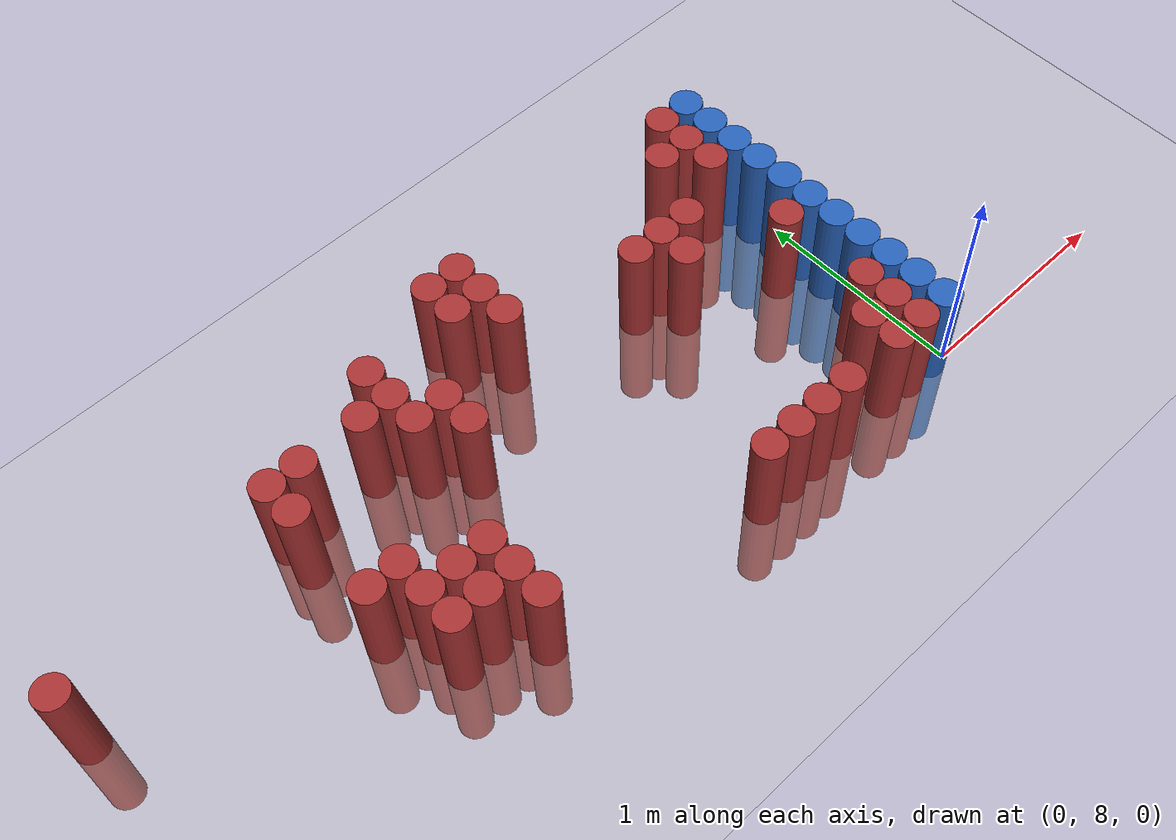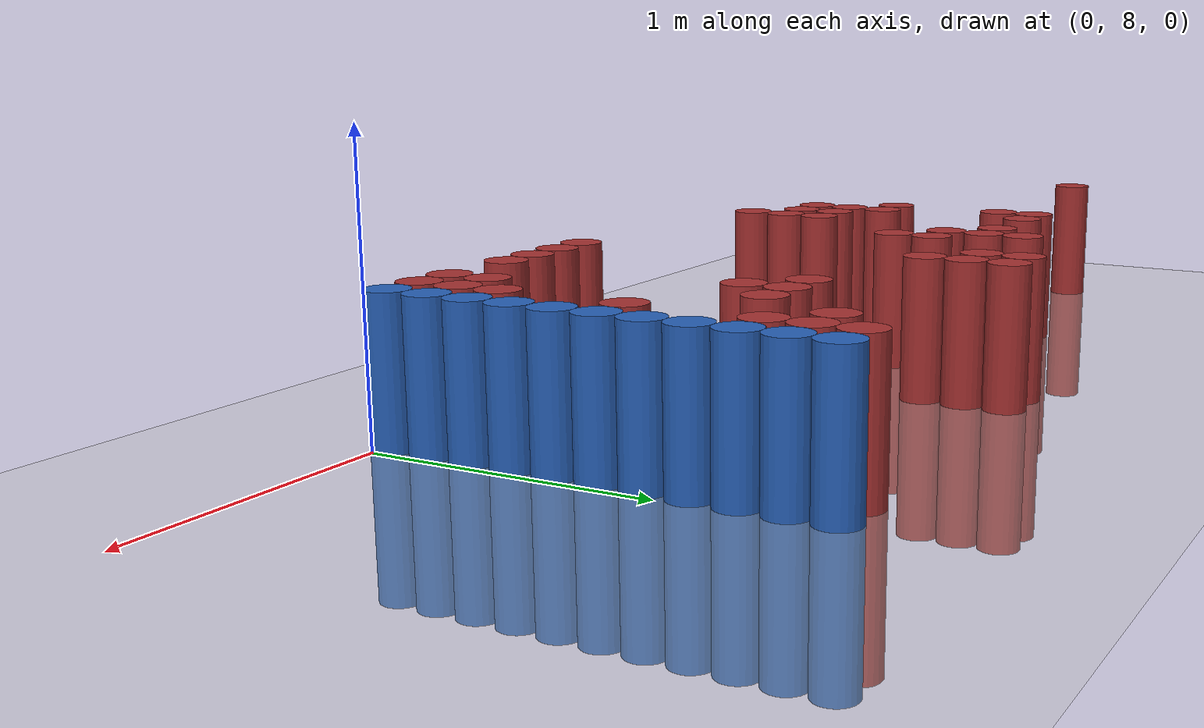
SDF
<sdf version="1.6">
 <world name="default">
  <model name="ground_plane">
   <static>1</static>
   <link name="link">
    <collision name="collision">
     <geometry><plane><normal>0 0 1</normal><size>100 100</size></plane></geometry>
     <surface><friction><ode><mu>100</mu><mu2>50</mu2></ode></friction></surface>
    </collision>
    <visual name="visual">
     <cast_shadows>0</cast_shadows>
     <geometry><plane><normal>0 0 1</normal><size>100 100</size></plane></geometry>
     <material>
      <script><uri>file://media/materials/scripts/gazebo.material</uri><name>Gazebo/Grey</name></script>
     </material>
    </visual>
   </link>
  </model>
  <model name="unit_cylinder_153">
   <static>1</static>
   <pose>-3.675000 9.075000 0.000000 0.000000 0.000000 0.000000</pose>
   <link name="link">
    <inertial>
     <mass>1</mass>
     <inertia><ixx>0.145833</ixx><ixy>0</ixy><ixz>0</ixz><iyy>0.145833</iyy><iyz>0</iyz><izz>0.125</izz></inertia>
    </inertial>
    <collision name="collision">
     <geometry><cylinder><radius>0.075000</radius><length>1</length></cylinder></geometry>
    </collision>
    <visual name="visual">
     <geometry><cylinder><radius>0.075000</radius><length>1</length></cylinder></geometry>
     <material>
      <ambient>0.648000 0.192000 0.192000 1</ambient>
      <diffuse>0.648000 0.192000 0.192000 1</diffuse>
     </material>
     <material>
      <script><name>Gazebo/Grey</name><uri>file://media/materials/scripts/gazebo.material</uri></script>
     </material>
    </visual>
   </link>
  </model>
  <model name="unit_cylinder_159">
   <static>1</static>
   <pose>-2.625000 8.625000 0.000000 0.000000 0.000000 0.000000</pose>
   <link name="link">
    <inertial>
     <mass>1</mass>
     <inertia><ixx>0.145833</ixx><ixy>0</ixy><ixz>0</ixz><iyy>0.145833</iyy><iyz>0</iyz><izz>0.125</izz></inertia>
    </inertial>
    <collision name="collision">
     <geometry><cylinder><radius>0.075000</radius><length>1</length></cylinder></geometry>
    </collision>
    <visual name="visual">
     <geometry><cylinder><radius>0.075000</radius><length>1</length></cylinder></geometry>
     <material>
      <ambient>0.648000 0.192000 0.192000 1</ambient>
      <diffuse>0.648000 0.192000 0.192000 1</diffuse>
     </material>
     <material>
      <script><name>Gazebo/Grey</name><uri>file://media/materials/scripts/gazebo.material</uri></script>
     </material>
    </visual>
   </link>
  </model>
  <model name="unit_cylinder_160">
   <static>1</static>
   <pose>-2.625000 9.075000 0.000000 0.000000 0.000000 0.000000</pose>
   <link name="link">
    <inertial>
     <mass>1</mass>
     <inertia><ixx>0.145833</ixx><ixy>0</ixy><ixz>0</ixz><iyy>0.145833</iyy><iyz>0</iyz><izz>0.125</izz></inertia>
    </inertial>
    <collision name="collision">
     <geometry><cylinder><radius>0.075000</radius><length>1</length></cylinder></geometry>
    </collision>
    <visual name="visual">
     <geometry><cylinder><radius>0.075000</radius><length>1</length></cylinder></geometry>
     <material>
      <ambient>0.648000 0.192000 0.192000 1</ambient>
      <diffuse>0.648000 0.192000 0.192000 1</diffuse>
     </material>
     <material>
      <script><name>Gazebo/Grey</name><uri>file://media/materials/scripts/gazebo.material</uri></script>
     </material>
    </visual>
   </link>
  </model>
  <model name="unit_cylinder_161">
   <static>1</static>
   <pose>-2.625000 9.225000 0.000000 0.000000 0.000000 0.000000</pose>
   <link name="link">
    <inertial>
     <mass>1</mass>
     <inertia><ixx>0.145833</ixx><ixy>0</ixy><ixz>0</ixz><iyy>0.145833</iyy><iyz>0</iyz><izz>0.125</izz></inertia>
    </inertial>
    <collision name="collision">
     <geometry><cylinder><radius>0.075000</radius><length>1</length></cylinder></geometry>
    </collision>
    <visual name="visual">
     <geometry><cylinder><radius>0.075000</radius><length>1</length></cylinder></geometry>
     <material>
      <ambient>0.648000 0.192000 0.192000 1</ambient>
      <diffuse>0.648000 0.192000 0.192000 1</diffuse>
     </material>
     <material>
      <script><name>Gazebo/Grey</name><uri>file://media/materials/scripts/gazebo.material</uri></script>
     </material>
    </visual>
   </link>
  </model>
  <model name="unit_cylinder_165">
   <static>1</static>
   <pose>-2.475000 8.325000 0.000000 0.000000 0.000000 0.000000</pose>
   <link name="link">
    <inertial>
     <mass>1</mass>
     <inertia><ixx>0.145833</ixx><ixy>0</ixy><ixz>0</ixz><iyy>0.145833</iyy><iyz>0</iyz><izz>0.125</izz></inertia>
    </inertial>
    <collision name="collision">
     <geometry><cylinder><radius>0.075000</radius><length>1</length></cylinder></geometry>
    </collision>
    <visual name="visual">
     <geometry><cylinder><radius>0.075000</radius><length>1</length></cylinder></geometry>
     <material>
      <ambient>0.648000 0.192000 0.192000 1</ambient>
      <diffuse>0.648000 0.192000 0.192000 1</diffuse>
     </material>
     <material>
      <script><name>Gazebo/Grey</name><uri>file://media/materials/scripts/gazebo.material</uri></script>
     </material>
    </visual>
   </link>
  </model>
  <model name="unit_cylinder_166">
   <static>1</static>
   <pose>-2.475000 8.475000 0.000000 0.000000 0.000000 0.000000</pose>
   <link name="link">
    <inertial>
     <mass>1</mass>
     <inertia><ixx>0.145833</ixx><ixy>0</ixy><ixz>0</ixz><iyy>0.145833</iyy><iyz>0</iyz><izz>0.125</izz></inertia>
    </inertial>
    <collision name="collision">
     <geometry><cylinder><radius>0.075000</radius><length>1</length></cylinder></geometry>
    </collision>
    <visual name="visual">
     <geometry><cylinder><radius>0.075000</radius><length>1</length></cylinder></geometry>
     <material>
      <ambient>0.648000 0.192000 0.192000 1</ambient>
      <diffuse>0.648000 0.192000 0.192000 1</diffuse>
     </material>
     <material>
      <script><name>Gazebo/Grey</name><uri>file://media/materials/scripts/gazebo.material</uri></script>
     </material>
    </visual>
   </link>
  </model>
  <model name="unit_cylinder_167">
   <static>1</static>
   <pose>-2.475000 8.625000 0.000000 0.000000 0.000000 0.000000</pose>
   <link name="link">
    <inertial>
     <mass>1</mass>
     <inertia><ixx>0.145833</ixx><ixy>0</ixy><ixz>0</ixz><iyy>0.145833</iyy><iyz>0</iyz><izz>0.125</izz></inertia>
    </inertial>
    <collision name="collision">
     <geometry><cylinder><radius>0.075000</radius><length>1</length></cylinder></geometry>
    </collision>
    <visual name="visual">
     <geometry><cylinder><radius>0.075000</radius><length>1</length></cylinder></geometry>
     <material>
      <ambient>0.648000 0.192000 0.192000 1</ambient>
      <diffuse>0.648000 0.192000 0.192000 1</diffuse>
     </material>
     <material>
      <script><name>Gazebo/Grey</name><uri>file://media/materials/scripts/gazebo.material</uri></script>
     </material>
    </visual>
   </link>
  </model>
  <model name="unit_cylinder_168">
   <static>1</static>
   <pose>-2.475000 9.225000 0.000000 0.000000 0.000000 0.000000</pose>
   <link name="link">
    <inertial>
     <mass>1</mass>
     <inertia><ixx>0.145833</ixx><ixy>0</ixy><ixz>0</ixz><iyy>0.145833</iyy><iyz>0</iyz><izz>0.125</izz></inertia>
    </inertial>
    <collision name="collision">
     <geometry><cylinder><radius>0.075000</radius><length>1</length></cylinder></geometry>
    </collision>
    <visual name="visual">
     <geometry><cylinder><radius>0.075000</radius><length>1</length></cylinder></geometry>
     <material>
      <ambient>0.648000 0.192000 0.192000 1</ambient>
      <diffuse>0.648000 0.192000 0.192000 1</diffuse>
     </material>
     <material>
      <script><name>Gazebo/Grey</name><uri>file://media/materials/scripts/gazebo.material</uri></script>
     </material>
    </visual>
   </link>
  </model>
  <model name="unit_cylinder_171">
   <static>1</static>
   <pose>-2.325000 8.325000 0.000000 0.000000 0.000000 0.000000</pose>
   <link name="link">
    <inertial>
     <mass>1</mass>
     <inertia><ixx>0.145833</ixx><ixy>0</ixy><ixz>0</ixz><iyy>0.145833</iyy><iyz>0</iyz><izz>0.125</izz></inertia>
    </inertial>
    <collision name="collision">
     <geometry><cylinder><radius>0.075000</radius><length>1</length></cylinder></geometry>
    </collision>
    <visual name="visual">
     <geometry><cylinder><radius>0.075000</radius><length>1</length></cylinder></geometry>
     <material>
      <ambient>0.648000 0.192000 0.192000 1</ambient>
      <diffuse>0.648000 0.192000 0.192000 1</diffuse>
     </material>
     <material>
      <script><name>Gazebo/Grey</name><uri>file://media/materials/scripts/gazebo.material</uri></script>
     </material>
    </visual>
   </link>
  </model>
  <model name="unit_cylinder_172">
   <static>1</static>
   <pose>-2.325000 8.475000 0.000000 0.000000 0.000000 0.000000</pose>
   <link name="link">
    <inertial>
     <mass>1</mass>
     <inertia><ixx>0.145833</ixx><ixy>0</ixy><ixz>0</ixz><iyy>0.145833</iyy><iyz>0</iyz><izz>0.125</izz></inertia>
    </inertial>
    <collision name="collision">
     <geometry><cylinder><radius>0.075000</radius><length>1</length></cylinder></geometry>
    </collision>
    <visual name="visual">
     <geometry><cylinder><radius>0.075000</radius><length>1</length></cylinder></geometry>
     <material>
      <ambient>0.648000 0.192000 0.192000 1</ambient>
      <diffuse>0.648000 0.192000 0.192000 1</diffuse>
     </material>
     <material>
      <script><name>Gazebo/Grey</name><uri>file://media/materials/scripts/gazebo.material</uri></script>
     </material>
    </visual>
   </link>
  </model>
  <model name="unit_cylinder_175">
   <static>1</static>
   <pose>-2.175000 8.175000 0.000000 0.000000 0.000000 0.000000</pose>
   <link name="link">
    <inertial>
     <mass>1</mass>
     <inertia><ixx>0.145833</ixx><ixy>0</ixy><ixz>0</ixz><iyy>0.145833</iyy><iyz>0</iyz><izz>0.125</izz></inertia>
    </inertial>
    <collision name="collision">
     <geometry><cylinder><radius>0.075000</radius><length>1</length></cylinder></geometry>
    </collision>
    <visual name="visual">
     <geometry><cylinder><radius>0.075000</radius><length>1</length></cylinder></geometry>
     <material>
      <ambient>0.648000 0.192000 0.192000 1</ambient>
      <diffuse>0.648000 0.192000 0.192000 1</diffuse>
     </material>
     <material>
      <script><name>Gazebo/Grey</name><uri>file://media/materials/scripts/gazebo.material</uri></script>
     </material>
    </visual>
   </link>
  </model>
  <model name="unit_cylinder_176">
   <static>1</static>
   <pose>-2.175000 8.325000 0.000000 0.000000 0.000000 0.000000</pose>
   <link name="link">
    <inertial>
     <mass>1</mass>
     <inertia><ixx>0.145833</ixx><ixy>0</ixy><ixz>0</ixz><iyy>0.145833</iyy><iyz>0</iyz><izz>0.125</izz></inertia>
    </inertial>
    <collision name="collision">
     <geometry><cylinder><radius>0.075000</radius><length>1</length></cylinder></geometry>
    </collision>
    <visual name="visual">
     <geometry><cylinder><radius>0.075000</radius><length>1</length></cylinder></geometry>
     <material>
      <ambient>0.648000 0.192000 0.192000 1</ambient>
      <diffuse>0.648000 0.192000 0.192000 1</diffuse>
     </material>
     <material>
      <script><name>Gazebo/Grey</name><uri>file://media/materials/scripts/gazebo.material</uri></script>
     </material>
    </visual>
   </link>
  </model>
  <model name="unit_cylinder_177">
   <static>1</static>
   <pose>-2.175000 8.475000 0.000000 0.000000 0.000000 0.000000</pose>
   <link name="link">
    <inertial>
     <mass>1</mass>
     <inertia><ixx>0.145833</ixx><ixy>0</ixy><ixz>0</ixz><iyy>0.145833</iyy><iyz>0</iyz><izz>0.125</izz></inertia>
    </inertial>
    <collision name="collision">
     <geometry><cylinder><radius>0.075000</radius><length>1</length></cylinder></geometry>
    </collision>
    <visual name="visual">
     <geometry><cylinder><radius>0.075000</radius><length>1</length></cylinder></geometry>
     <material>
      <ambient>0.648000 0.192000 0.192000 1</ambient>
      <diffuse>0.648000 0.192000 0.192000 1</diffuse>
     </material>
     <material>
      <script><name>Gazebo/Grey</name><uri>file://media/materials/scripts/gazebo.material</uri></script>
     </material>
    </visual>
   </link>
  </model>
  <model name="unit_cylinder_178">
   <static>1</static>
   <pose>-2.175000 9.225000 0.000000 0.000000 0.000000 0.000000</pose>
   <link name="link">
    <inertial>
     <mass>1</mass>
     <inertia><ixx>0.145833</ixx><ixy>0</ixy><ixz>0</ixz><iyy>0.145833</iyy><iyz>0</iyz><izz>0.125</izz></inertia>
    </inertial>
    <collision name="collision">
     <geometry><cylinder><radius>0.075000</radius><length>1</length></cylinder></geometry>
    </collision>
    <visual name="visual">
     <geometry><cylinder><radius>0.075000</radius><length>1</length></cylinder></geometry>
     <material>
      <ambient>0.648000 0.192000 0.192000 1</ambient>
      <diffuse>0.648000 0.192000 0.192000 1</diffuse>
     </material>
     <material>
      <script><name>Gazebo/Grey</name><uri>file://media/materials/scripts/gazebo.material</uri></script>
     </material>
    </visual>
   </link>
  </model>
  <model name="unit_cylinder_181">
   <static>1</static>
   <pose>-2.025000 9.075000 0.000000 0.000000 0.000000 0.000000</pose>
   <link name="link">
    <inertial>
     <mass>1</mass>
     <inertia><ixx>0.145833</ixx><ixy>0</ixy><ixz>0</ixz><iyy>0.145833</iyy><iyz>0</iyz><izz>0.125</izz></inertia>
    </inertial>
    <collision name="collision">
     <geometry><cylinder><radius>0.075000</radius><length>1</length></cylinder></geometry>
    </collision>
    <visual name="visual">
     <geometry><cylinder><radius>0.075000</radius><length>1</length></cylinder></geometry>
     <material>
      <ambient>0.648000 0.192000 0.192000 1</ambient>
      <diffuse>0.648000 0.192000 0.192000 1</diffuse>
     </material>
     <material>
      <script><name>Gazebo/Grey</name><uri>file://media/materials/scripts/gazebo.material</uri></script>
     </material>
    </visual>
   </link>
  </model>
  <model name="unit_cylinder_182">
   <static>1</static>
   <pose>-2.025000 9.225000 0.000000 0.000000 0.000000 0.000000</pose>
   <link name="link">
    <inertial>
     <mass>1</mass>
     <inertia><ixx>0.145833</ixx><ixy>0</ixy><ixz>0</ixz><iyy>0.145833</iyy><iyz>0</iyz><izz>0.125</izz></inertia>
    </inertial>
    <collision name="collision">
     <geometry><cylinder><radius>0.075000</radius><length>1</length></cylinder></geometry>
    </collision>
    <visual name="visual">
     <geometry><cylinder><radius>0.075000</radius><length>1</length></cylinder></geometry>
     <material>
      <ambient>0.648000 0.192000 0.192000 1</ambient>
      <diffuse>0.648000 0.192000 0.192000 1</diffuse>
     </material>
     <material>
      <script><name>Gazebo/Grey</name><uri>file://media/materials/scripts/gazebo.material</uri></script>
     </material>
    </visual>
   </link>
  </model>
  <model name="unit_cylinder_183">
   <static>1</static>
   <pose>-2.025000 9.375000 0.000000 0.000000 0.000000 0.000000</pose>
   <link name="link">
    <inertial>
     <mass>1</mass>
     <inertia><ixx>0.145833</ixx><ixy>0</ixy><ixz>0</ixz><iyy>0.145833</iyy><iyz>0</iyz><izz>0.125</izz></inertia>
    </inertial>
    <collision name="collision">
     <geometry><cylinder><radius>0.075000</radius><length>1</length></cylinder></geometry>
    </collision>
    <visual name="visual">
     <geometry><cylinder><radius>0.075000</radius><length>1</length></cylinder></geometry>
     <material>
      <ambient>0.648000 0.192000 0.192000 1</ambient>
      <diffuse>0.648000 0.192000 0.192000 1</diffuse>
     </material>
     <material>
      <script><name>Gazebo/Grey</name><uri>file://media/materials/scripts/gazebo.material</uri></script>
     </material>
    </visual>
   </link>
  </model>
  <model name="unit_cylinder_185">
   <static>1</static>
   <pose>-1.875000 8.925000 0.000000 0.000000 0.000000 0.000000</pose>
   <link name="link">
    <inertial>
     <mass>1</mass>
     <inertia><ixx>0.145833</ixx><ixy>0</ixy><ixz>0</ixz><iyy>0.145833</iyy><iyz>0</iyz><izz>0.125</izz></inertia>
    </inertial>
    <collision name="collision">
     <geometry><cylinder><radius>0.075000</radius><length>1</length></cylinder></geometry>
    </collision>
    <visual name="visual">
     <geometry><cylinder><radius>0.075000</radius><length>1</length></cylinder></geometry>
     <material>
      <ambient>0.648000 0.192000 0.192000 1</ambient>
      <diffuse>0.648000 0.192000 0.192000 1</diffuse>
     </material>
     <material>
      <script><name>Gazebo/Grey</name><uri>file://media/materials/scripts/gazebo.material</uri></script>
     </material>
    </visual>
   </link>
  </model>
  <model name="unit_cylinder_186">
   <static>1</static>
   <pose>-1.875000 9.075000 0.000000 0.000000 0.000000 0.000000</pose>
   <link name="link">
    <inertial>
     <mass>1</mass>
     <inertia><ixx>0.145833</ixx><ixy>0</ixy><ixz>0</ixz><iyy>0.145833</iyy><iyz>0</iyz><izz>0.125</izz></inertia>
    </inertial>
    <collision name="collision">
     <geometry><cylinder><radius>0.075000</radius><length>1</length></cylinder></geometry>
    </collision>
    <visual name="visual">
     <geometry><cylinder><radius>0.075000</radius><length>1</length></cylinder></geometry>
     <material>
      <ambient>0.648000 0.192000 0.192000 1</ambient>
      <diffuse>0.648000 0.192000 0.192000 1</diffuse>
     </material>
     <material>
      <script><name>Gazebo/Grey</name><uri>file://media/materials/scripts/gazebo.material</uri></script>
     </material>
    </visual>
   </link>
  </model>
  <model name="unit_cylinder_188">
   <static>1</static>
   <pose>-1.575000 9.375000 0.000000 0.000000 0.000000 0.000000</pose>
   <link name="link">
    <inertial>
     <mass>1</mass>
     <inertia><ixx>0.145833</ixx><ixy>0</ixy><ixz>0</ixz><iyy>0.145833</iyy><iyz>0</iyz><izz>0.125</izz></inertia>
    </inertial>
    <collision name="collision">
     <geometry><cylinder><radius>0.075000</radius><length>1</length></cylinder></geometry>
    </collision>
    <visual name="visual">
     <geometry><cylinder><radius>0.075000</radius><length>1</length></cylinder></geometry>
     <material>
      <ambient>0.648000 0.192000 0.192000 1</ambient>
      <diffuse>0.648000 0.192000 0.192000 1</diffuse>
     </material>
     <material>
      <script><name>Gazebo/Grey</name><uri>file://media/materials/scripts/gazebo.material</uri></script>
     </material>
    </visual>
   </link>
  </model>
  <model name="unit_cylinder_189">
   <static>1</static>
   <pose>-1.575000 9.525000 0.000000 0.000000 0.000000 0.000000</pose>
   <link name="link">
    <inertial>
     <mass>1</mass>
     <inertia><ixx>0.145833</ixx><ixy>0</ixy><ixz>0</ixz><iyy>0.145833</iyy><iyz>0</iyz><izz>0.125</izz></inertia>
    </inertial>
    <collision name="collision">
     <geometry><cylinder><radius>0.075000</radius><length>1</length></cylinder></geometry>
    </collision>
    <visual name="visual">
     <geometry><cylinder><radius>0.075000</radius><length>1</length></cylinder></geometry>
     <material>
      <ambient>0.648000 0.192000 0.192000 1</ambient>
      <diffuse>0.648000 0.192000 0.192000 1</diffuse>
     </material>
     <material>
      <script><name>Gazebo/Grey</name><uri>file://media/materials/scripts/gazebo.material</uri></script>
     </material>
    </visual>
   </link>
  </model>
  <model name="unit_cylinder_192">
   <static>1</static>
   <pose>-1.425000 9.225000 0.000000 0.000000 0.000000 0.000000</pose>
   <link name="link">
    <inertial>
     <mass>1</mass>
     <inertia><ixx>0.145833</ixx><ixy>0</ixy><ixz>0</ixz><iyy>0.145833</iyy><iyz>0</iyz><izz>0.125</izz></inertia>
    </inertial>
    <collision name="collision">
     <geometry><cylinder><radius>0.075000</radius><length>1</length></cylinder></geometry>
    </collision>
    <visual name="visual">
     <geometry><cylinder><radius>0.075000</radius><length>1</length></cylinder></geometry>
     <material>
      <ambient>0.648000 0.192000 0.192000 1</ambient>
      <diffuse>0.648000 0.192000 0.192000 1</diffuse>
     </material>
     <material>
      <script><name>Gazebo/Grey</name><uri>file://media/materials/scripts/gazebo.material</uri></script>
     </material>
    </visual>
   </link>
  </model>
  <model name="unit_cylinder_193">
   <static>1</static>
   <pose>-1.425000 9.375000 0.000000 0.000000 0.000000 0.000000</pose>
   <link name="link">
    <inertial>
     <mass>1</mass>
     <inertia><ixx>0.145833</ixx><ixy>0</ixy><ixz>0</ixz><iyy>0.145833</iyy><iyz>0</iyz><izz>0.125</izz></inertia>
    </inertial>
    <collision name="collision">
     <geometry><cylinder><radius>0.075000</radius><length>1</length></cylinder></geometry>
    </collision>
    <visual name="visual">
     <geometry><cylinder><radius>0.075000</radius><length>1</length></cylinder></geometry>
     <material>
      <ambient>0.648000 0.192000 0.192000 1</ambient>
      <diffuse>0.648000 0.192000 0.192000 1</diffuse>
     </material>
     <material>
      <script><name>Gazebo/Grey</name><uri>file://media/materials/scripts/gazebo.material</uri></script>
     </material>
    </visual>
   </link>
  </model>
  <model name="unit_cylinder_194">
   <static>1</static>
   <pose>-1.425000 9.525000 0.000000 0.000000 0.000000 0.000000</pose>
   <link name="link">
    <inertial>
     <mass>1</mass>
     <inertia><ixx>0.145833</ixx><ixy>0</ixy><ixz>0</ixz><iyy>0.145833</iyy><iyz>0</iyz><izz>0.125</izz></inertia>
    </inertial>
    <collision name="collision">
     <geometry><cylinder><radius>0.075000</radius><length>1</length></cylinder></geometry>
    </collision>
    <visual name="visual">
     <geometry><cylinder><radius>0.075000</radius><length>1</length></cylinder></geometry>
     <material>
      <ambient>0.648000 0.192000 0.192000 1</ambient>
      <diffuse>0.648000 0.192000 0.192000 1</diffuse>
     </material>
     <material>
      <script><name>Gazebo/Grey</name><uri>file://media/materials/scripts/gazebo.material</uri></script>
     </material>
    </visual>
   </link>
  </model>
  <model name="unit_cylinder_197">
   <static>1</static>
   <pose>-1.125000 8.025000 0.000000 0.000000 0.000000 0.000000</pose>
   <link name="link">
    <inertial>
     <mass>1</mass>
     <inertia><ixx>0.145833</ixx><ixy>0</ixy><ixz>0</ixz><iyy>0.145833</iyy><iyz>0</iyz><izz>0.125</izz></inertia>
    </inertial>
    <collision name="collision">
     <geometry><cylinder><radius>0.075000</radius><length>1</length></cylinder></geometry>
    </collision>
    <visual name="visual">
     <geometry><cylinder><radius>0.075000</radius><length>1</length></cylinder></geometry>
     <material>
      <ambient>0.648000 0.192000 0.192000 1</ambient>
      <diffuse>0.648000 0.192000 0.192000 1</diffuse>
     </material>
     <material>
      <script><name>Gazebo/Grey</name><uri>file://media/materials/scripts/gazebo.material</uri></script>
     </material>
    </visual>
   </link>
  </model>
  <model name="unit_cylinder_201">
   <static>1</static>
   <pose>-0.975000 8.025000 0.000000 0.000000 0.000000 0.000000</pose>
   <link name="link">
    <inertial>
     <mass>1</mass>
     <inertia><ixx>0.145833</ixx><ixy>0</ixy><ixz>0</ixz><iyy>0.145833</iyy><iyz>0</iyz><izz>0.125</izz></inertia>
    </inertial>
    <collision name="collision">
     <geometry><cylinder><radius>0.075000</radius><length>1</length></cylinder></geometry>
    </collision>
    <visual name="visual">
     <geometry><cylinder><radius>0.075000</radius><length>1</length></cylinder></geometry>
     <material>
      <ambient>0.648000 0.192000 0.192000 1</ambient>
      <diffuse>0.648000 0.192000 0.192000 1</diffuse>
     </material>
     <material>
      <script><name>Gazebo/Grey</name><uri>file://media/materials/scripts/gazebo.material</uri></script>
     </material>
    </visual>
   </link>
  </model>
  <model name="unit_cylinder_206">
   <static>1</static>
   <pose>-0.825000 8.025000 0.000000 0.000000 0.000000 0.000000</pose>
   <link name="link">
    <inertial>
     <mass>1</mass>
     <inertia><ixx>0.145833</ixx><ixy>0</ixy><ixz>0</ixz><iyy>0.145833</iyy><iyz>0</iyz><izz>0.125</izz></inertia>
    </inertial>
    <collision name="collision">
     <geometry><cylinder><radius>0.075000</radius><length>1</length></cylinder></geometry>
    </collision>
    <visual name="visual">
     <geometry><cylinder><radius>0.075000</radius><length>1</length></cylinder></geometry>
     <material>
      <ambient>0.648000 0.192000 0.192000 1</ambient>
      <diffuse>0.648000 0.192000 0.192000 1</diffuse>
     </material>
     <material>
      <script><name>Gazebo/Grey</name><uri>file://media/materials/scripts/gazebo.material</uri></script>
     </material>
    </visual>
   </link>
  </model>
  <model name="unit_cylinder_207">
   <static>1</static>
   <pose>-0.825000 9.075000 0.000000 0.000000 0.000000 0.000000</pose>
   <link name="link">
    <inertial>
     <mass>1</mass>
     <inertia><ixx>0.145833</ixx><ixy>0</ixy><ixz>0</ixz><iyy>0.145833</iyy><iyz>0</iyz><izz>0.125</izz></inertia>
    </inertial>
    <collision name="collision">
     <geometry><cylinder><radius>0.075000</radius><length>1</length></cylinder></geometry>
    </collision>
    <visual name="visual">
     <geometry><cylinder><radius>0.075000</radius><length>1</length></cylinder></geometry>
     <material>
      <ambient>0.648000 0.192000 0.192000 1</ambient>
      <diffuse>0.648000 0.192000 0.192000 1</diffuse>
     </material>
     <material>
      <script><name>Gazebo/Grey</name><uri>file://media/materials/scripts/gazebo.material</uri></script>
     </material>
    </visual>
   </link>
  </model>
  <model name="unit_cylinder_211">
   <static>1</static>
   <pose>-0.675000 8.025000 0.000000 0.000000 0.000000 0.000000</pose>
   <link name="link">
    <inertial>
     <mass>1</mass>
     <inertia><ixx>0.145833</ixx><ixy>0</ixy><ixz>0</ixz><iyy>0.145833</iyy><iyz>0</iyz><izz>0.125</izz></inertia>
    </inertial>
    <collision name="collision">
     <geometry><cylinder><radius>0.075000</radius><length>1</length></cylinder></geometry>
    </collision>
    <visual name="visual">
     <geometry><cylinder><radius>0.075000</radius><length>1</length></cylinder></geometry>
     <material>
      <ambient>0.648000 0.192000 0.192000 1</ambient>
      <diffuse>0.648000 0.192000 0.192000 1</diffuse>
     </material>
     <material>
      <script><name>Gazebo/Grey</name><uri>file://media/materials/scripts/gazebo.material</uri></script>
     </material>
    </visual>
   </link>
  </model>
  <model name="unit_cylinder_212">
   <static>1</static>
   <pose>-0.675000 8.925000 0.000000 0.000000 0.000000 0.000000</pose>
   <link name="link">
    <inertial>
     <mass>1</mass>
     <inertia><ixx>0.145833</ixx><ixy>0</ixy><ixz>0</ixz><iyy>0.145833</iyy><iyz>0</iyz><izz>0.125</izz></inertia>
    </inertial>
    <collision name="collision">
     <geometry><cylinder><radius>0.075000</radius><length>1</length></cylinder></geometry>
    </collision>
    <visual name="visual">
     <geometry><cylinder><radius>0.075000</radius><length>1</length></cylinder></geometry>
     <material>
      <ambient>0.648000 0.192000 0.192000 1</ambient>
      <diffuse>0.648000 0.192000 0.192000 1</diffuse>
     </material>
     <material>
      <script><name>Gazebo/Grey</name><uri>file://media/materials/scripts/gazebo.material</uri></script>
     </material>
    </visual>
   </link>
  </model>
  <model name="unit_cylinder_213">
   <static>1</static>
   <pose>-0.675000 9.075000 0.000000 0.000000 0.000000 0.000000</pose>
   <link name="link">
    <inertial>
     <mass>1</mass>
     <inertia><ixx>0.145833</ixx><ixy>0</ixy><ixz>0</ixz><iyy>0.145833</iyy><iyz>0</iyz><izz>0.125</izz></inertia>
    </inertial>
    <collision name="collision">
     <geometry><cylinder><radius>0.075000</radius><length>1</length></cylinder></geometry>
    </collision>
    <visual name="visual">
     <geometry><cylinder><radius>0.075000</radius><length>1</length></cylinder></geometry>
     <material>
      <ambient>0.648000 0.192000 0.192000 1</ambient>
      <diffuse>0.648000 0.192000 0.192000 1</diffuse>
     </material>
     <material>
      <script><name>Gazebo/Grey</name><uri>file://media/materials/scripts/gazebo.material</uri></script>
     </material>
    </visual>
   </link>
  </model>
  <model name="unit_cylinder_215">
   <static>1</static>
   <pose>-0.525000 9.075000 0.000000 0.000000 0.000000 0.000000</pose>
   <link name="link">
    <inertial>
     <mass>1</mass>
     <inertia><ixx>0.145833</ixx><ixy>0</ixy><ixz>0</ixz><iyy>0.145833</iyy><iyz>0</iyz><izz>0.125</izz></inertia>
    </inertial>
    <collision name="collision">
     <geometry><cylinder><radius>0.075000</radius><length>1</length></cylinder></geometry>
    </collision>
    <visual name="visual">
     <geometry><cylinder><radius>0.075000</radius><length>1</length></cylinder></geometry>
     <material>
      <ambient>0.648000 0.192000 0.192000 1</ambient>
      <diffuse>0.648000 0.192000 0.192000 1</diffuse>
     </material>
     <material>
      <script><name>Gazebo/Grey</name><uri>file://media/materials/scripts/gazebo.material</uri></script>
     </material>
    </visual>
   </link>
  </model>
  <model name="unit_cylinder_216">
   <static>1</static>
   <pose>-0.375000 8.025000 0.000000 0.000000 0.000000 0.000000</pose>
   <link name="link">
    <inertial>
     <mass>1</mass>
     <inertia><ixx>0.145833</ixx><ixy>0</ixy><ixz>0</ixz><iyy>0.145833</iyy><iyz>0</iyz><izz>0.125</izz></inertia>
    </inertial>
    <collision name="collision">
     <geometry><cylinder><radius>0.075000</radius><length>1</length></cylinder></geometry>
    </collision>
    <visual name="visual">
     <geometry><cylinder><radius>0.075000</radius><length>1</length></cylinder></geometry>
     <material>
      <ambient>0.648000 0.192000 0.192000 1</ambient>
      <diffuse>0.648000 0.192000 0.192000 1</diffuse>
     </material>
     <material>
      <script><name>Gazebo/Grey</name><uri>file://media/materials/scripts/gazebo.material</uri></script>
     </material>
    </visual>
   </link>
  </model>
  <model name="unit_cylinder_217">
   <static>1</static>
   <pose>-0.375000 8.175000 0.000000 0.000000 0.000000 0.000000</pose>
   <link name="link">
    <inertial>
     <mass>1</mass>
     <inertia><ixx>0.145833</ixx><ixy>0</ixy><ixz>0</ixz><iyy>0.145833</iyy><iyz>0</iyz><izz>0.125</izz></inertia>
    </inertial>
    <collision name="collision">
     <geometry><cylinder><radius>0.075000</radius><length>1</length></cylinder></geometry>
    </collision>
    <visual name="visual">
     <geometry><cylinder><radius>0.075000</radius><length>1</length></cylinder></geometry>
     <material>
      <ambient>0.648000 0.192000 0.192000 1</ambient>
      <diffuse>0.648000 0.192000 0.192000 1</diffuse>
     </material>
     <material>
      <script><name>Gazebo/Grey</name><uri>file://media/materials/scripts/gazebo.material</uri></script>
     </material>
    </visual>
   </link>
  </model>
  <model name="unit_cylinder_218">
   <static>1</static>
   <pose>-0.375000 9.375000 0.000000 0.000000 0.000000 0.000000</pose>
   <link name="link">
    <inertial>
     <mass>1</mass>
     <inertia><ixx>0.145833</ixx><ixy>0</ixy><ixz>0</ixz><iyy>0.145833</iyy><iyz>0</iyz><izz>0.125</izz></inertia>
    </inertial>
    <collision name="collision">
     <geometry><cylinder><radius>0.075000</radius><length>1</length></cylinder></geometry>
    </collision>
    <visual name="visual">
     <geometry><cylinder><radius>0.075000</radius><length>1</length></cylinder></geometry>
     <material>
      <ambient>0.648000 0.192000 0.192000 1</ambient>
      <diffuse>0.648000 0.192000 0.192000 1</diffuse>
     </material>
     <material>
      <script><name>Gazebo/Grey</name><uri>file://media/materials/scripts/gazebo.material</uri></script>
     </material>
    </visual>
   </link>
  </model>
  <model name="unit_cylinder_225">
   <static>1</static>
   <pose>-0.225000 8.025000 0.000000 0.000000 0.000000 0.000000</pose>
   <link name="link">
    <inertial>
     <mass>1</mass>
     <inertia><ixx>0.145833</ixx><ixy>0</ixy><ixz>0</ixz><iyy>0.145833</iyy><iyz>0</iyz><izz>0.125</izz></inertia>
    </inertial>
    <collision name="collision">
     <geometry><cylinder><radius>0.075000</radius><length>1</length></cylinder></geometry>
    </collision>
    <visual name="visual">
     <geometry><cylinder><radius>0.075000</radius><length>1</length></cylinder></geometry>
     <material>
      <ambient>0.648000 0.192000 0.192000 1</ambient>
      <diffuse>0.648000 0.192000 0.192000 1</diffuse>
     </material>
     <material>
      <script><name>Gazebo/Grey</name><uri>file://media/materials/scripts/gazebo.material</uri></script>
     </material>
    </visual>
   </link>
  </model>
  <model name="unit_cylinder_226">
   <static>1</static>
   <pose>-0.225000 8.175000 0.000000 0.000000 0.000000 0.000000</pose>
   <link name="link">
    <inertial>
     <mass>1</mass>
     <inertia><ixx>0.145833</ixx><ixy>0</ixy><ixz>0</ixz><iyy>0.145833</iyy><iyz>0</iyz><izz>0.125</izz></inertia>
    </inertial>
    <collision name="collision">
     <geometry><cylinder><radius>0.075000</radius><length>1</length></cylinder></geometry>
    </collision>
    <visual name="visual">
     <geometry><cylinder><radius>0.075000</radius><length>1</length></cylinder></geometry>
     <material>
      <ambient>0.648000 0.192000 0.192000 1</ambient>
      <diffuse>0.648000 0.192000 0.192000 1</diffuse>
     </material>
     <material>
      <script><name>Gazebo/Grey</name><uri>file://media/materials/scripts/gazebo.material</uri></script>
     </material>
    </visual>
   </link>
  </model>
  <model name="unit_cylinder_227">
   <static>1</static>
   <pose>-0.225000 8.325000 0.000000 0.000000 0.000000 0.000000</pose>
   <link name="link">
    <inertial>
     <mass>1</mass>
     <inertia><ixx>0.145833</ixx><ixy>0</ixy><ixz>0</ixz><iyy>0.145833</iyy><iyz>0</iyz><izz>0.125</izz></inertia>
    </inertial>
    <collision name="collision">
     <geometry><cylinder><radius>0.075000</radius><length>1</length></cylinder></geometry>
    </collision>
    <visual name="visual">
     <geometry><cylinder><radius>0.075000</radius><length>1</length></cylinder></geometry>
     <material>
      <ambient>0.648000 0.192000 0.192000 1</ambient>
      <diffuse>0.648000 0.192000 0.192000 1</diffuse>
     </material>
     <material>
      <script><name>Gazebo/Grey</name><uri>file://media/materials/scripts/gazebo.material</uri></script>
     </material>
    </visual>
   </link>
  </model>
  <model name="unit_cylinder_228">
   <static>1</static>
   <pose>-0.225000 8.775000 0.000000 0.000000 0.000000 0.000000</pose>
   <link name="link">
    <inertial>
     <mass>1</mass>
     <inertia><ixx>0.145833</ixx><ixy>0</ixy><ixz>0</ixz><iyy>0.145833</iyy><iyz>0</iyz><izz>0.125</izz></inertia>
    </inertial>
    <collision name="collision">
     <geometry><cylinder><radius>0.075000</radius><length>1</length></cylinder></geometry>
    </collision>
    <visual name="visual">
     <geometry><cylinder><radius>0.075000</radius><length>1</length></cylinder></geometry>
     <material>
      <ambient>0.648000 0.192000 0.192000 1</ambient>
      <diffuse>0.648000 0.192000 0.192000 1</diffuse>
     </material>
     <material>
      <script><name>Gazebo/Grey</name><uri>file://media/materials/scripts/gazebo.material</uri></script>
     </material>
    </visual>
   </link>
  </model>
  <model name="unit_cylinder_229">
   <static>1</static>
   <pose>-0.225000 9.225000 0.000000 0.000000 0.000000 0.000000</pose>
   <link name="link">
    <inertial>
     <mass>1</mass>
     <inertia><ixx>0.145833</ixx><ixy>0</ixy><ixz>0</ixz><iyy>0.145833</iyy><iyz>0</iyz><izz>0.125</izz></inertia>
    </inertial>
    <collision name="collision">
     <geometry><cylinder><radius>0.075000</radius><length>1</length></cylinder></geometry>
    </collision>
    <visual name="visual">
     <geometry><cylinder><radius>0.075000</radius><length>1</length></cylinder></geometry>
     <material>
      <ambient>0.648000 0.192000 0.192000 1</ambient>
      <diffuse>0.648000 0.192000 0.192000 1</diffuse>
     </material>
     <material>
      <script><name>Gazebo/Grey</name><uri>file://media/materials/scripts/gazebo.material</uri></script>
     </material>
    </visual>
   </link>
  </model>
  <model name="unit_cylinder_230">
   <static>1</static>
   <pose>-0.225000 9.375000 0.000000 0.000000 0.000000 0.000000</pose>
   <link name="link">
    <inertial>
     <mass>1</mass>
     <inertia><ixx>0.145833</ixx><ixy>0</ixy><ixz>0</ixz><iyy>0.145833</iyy><iyz>0</iyz><izz>0.125</izz></inertia>
    </inertial>
    <collision name="collision">
     <geometry><cylinder><radius>0.075000</radius><length>1</length></cylinder></geometry>
    </collision>
    <visual name="visual">
     <geometry><cylinder><radius>0.075000</radius><length>1</length></cylinder></geometry>
     <material>
      <ambient>0.648000 0.192000 0.192000 1</ambient>
      <diffuse>0.648000 0.192000 0.192000 1</diffuse>
     </material>
     <material>
      <script><name>Gazebo/Grey</name><uri>file://media/materials/scripts/gazebo.material</uri></script>
     </material>
    </visual>
   </link>
  </model>
  <model name="unit_cylinder_231">
   <static>1</static>
   <pose>-0.225000 9.525000 0.000000 0.000000 0.000000 0.000000</pose>
   <link name="link">
    <inertial>
     <mass>1</mass>
     <inertia><ixx>0.145833</ixx><ixy>0</ixy><ixz>0</ixz><iyy>0.145833</iyy><iyz>0</iyz><izz>0.125</izz></inertia>
    </inertial>
    <collision name="collision">
     <geometry><cylinder><radius>0.075000</radius><length>1</length></cylinder></geometry>
    </collision>
    <visual name="visual">
     <geometry><cylinder><radius>0.075000</radius><length>1</length></cylinder></geometry>
     <material>
      <ambient>0.648000 0.192000 0.192000 1</ambient>
      <diffuse>0.648000 0.192000 0.192000 1</diffuse>
     </material>
     <material>
      <script><name>Gazebo/Grey</name><uri>file://media/materials/scripts/gazebo.material</uri></script>
     </material>
    </visual>
   </link>
  </model>
  <model name="unit_cylinder_251">
   <static>1</static>
   <pose>-0.075000 8.025000 0.000000 0.000000 0.000000 0.000000</pose>
   <link name="link">
    <inertial>
     <mass>1</mass>
     <inertia><ixx>0.145833</ixx><ixy>0</ixy><ixz>0</ixz><iyy>0.145833</iyy><iyz>0</iyz><izz>0.125</izz></inertia>
    </inertial>
    <collision name="collision">
     <geometry><cylinder><radius>0.075000</radius><length>1</length></cylinder></geometry>
    </collision>
    <visual name="visual">
     <geometry><cylinder><radius>0.075000</radius><length>1</length></cylinder></geometry>
     <material>
      <ambient>0.152000 0.379000 0.720000 1</ambient>
      <diffuse>0.152000 0.379000 0.720000 1</diffuse>
     </material>
     <material>
      <script><name>Gazebo/Grey</name><uri>file://media/materials/scripts/gazebo.material</uri></script>
     </material>
    </visual>
   </link>
  </model>
  <model name="unit_cylinder_252">
   <static>1</static>
   <pose>-0.075000 8.175000 0.000000 0.000000 0.000000 0.000000</pose>
   <link name="link">
    <inertial>
     <mass>1</mass>
     <inertia><ixx>0.145833</ixx><ixy>0</ixy><ixz>0</ixz><iyy>0.145833</iyy><iyz>0</iyz><izz>0.125</izz></inertia>
    </inertial>
    <collision name="collision">
     <geometry><cylinder><radius>0.075000</radius><length>1</length></cylinder></geometry>
    </collision>
    <visual name="visual">
     <geometry><cylinder><radius>0.075000</radius><length>1</length></cylinder></geometry>
     <material>
      <ambient>0.152000 0.379000 0.720000 1</ambient>
      <diffuse>0.152000 0.379000 0.720000 1</diffuse>
     </material>
     <material>
      <script><name>Gazebo/Grey</name><uri>file://media/materials/scripts/gazebo.material</uri></script>
     </material>
    </visual>
   </link>
  </model>
  <model name="unit_cylinder_253">
   <static>1</static>
   <pose>-0.075000 8.325000 0.000000 0.000000 0.000000 0.000000</pose>
   <link name="link">
    <inertial>
     <mass>1</mass>
     <inertia><ixx>0.145833</ixx><ixy>0</ixy><ixz>0</ixz><iyy>0.145833</iyy><iyz>0</iyz><izz>0.125</izz></inertia>
    </inertial>
    <collision name="collision">
     <geometry><cylinder><radius>0.075000</radius><length>1</length></cylinder></geometry>
    </collision>
    <visual name="visual">
     <geometry><cylinder><radius>0.075000</radius><length>1</length></cylinder></geometry>
     <material>
      <ambient>0.152000 0.379000 0.720000 1</ambient>
      <diffuse>0.152000 0.379000 0.720000 1</diffuse>
     </material>
     <material>
      <script><name>Gazebo/Grey</name><uri>file://media/materials/scripts/gazebo.material</uri></script>
     </material>
    </visual>
   </link>
  </model>
  <model name="unit_cylinder_254">
   <static>1</static>
   <pose>-0.075000 8.475000 0.000000 0.000000 0.000000 0.000000</pose>
   <link name="link">
    <inertial>
     <mass>1</mass>
     <inertia><ixx>0.145833</ixx><ixy>0</ixy><ixz>0</ixz><iyy>0.145833</iyy><iyz>0</iyz><izz>0.125</izz></inertia>
    </inertial>
    <collision name="collision">
     <geometry><cylinder><radius>0.075000</radius><length>1</length></cylinder></geometry>
    </collision>
    <visual name="visual">
     <geometry><cylinder><radius>0.075000</radius><length>1</length></cylinder></geometry>
     <material>
      <ambient>0.152000 0.379000 0.720000 1</ambient>
      <diffuse>0.152000 0.379000 0.720000 1</diffuse>
     </material>
     <material>
      <script><name>Gazebo/Grey</name><uri>file://media/materials/scripts/gazebo.material</uri></script>
     </material>
    </visual>
   </link>
  </model>
  <model name="unit_cylinder_255">
   <static>1</static>
   <pose>-0.075000 8.625000 0.000000 0.000000 0.000000 0.000000</pose>
   <link name="link">
    <inertial>
     <mass>1</mass>
     <inertia><ixx>0.145833</ixx><ixy>0</ixy><ixz>0</ixz><iyy>0.145833</iyy><iyz>0</iyz><izz>0.125</izz></inertia>
    </inertial>
    <collision name="collision">
     <geometry><cylinder><radius>0.075000</radius><length>1</length></cylinder></geometry>
    </collision>
    <visual name="visual">
     <geometry><cylinder><radius>0.075000</radius><length>1</length></cylinder></geometry>
     <material>
      <ambient>0.152000 0.379000 0.720000 1</ambient>
      <diffuse>0.152000 0.379000 0.720000 1</diffuse>
     </material>
     <material>
      <script><name>Gazebo/Grey</name><uri>file://media/materials/scripts/gazebo.material</uri></script>
     </material>
    </visual>
   </link>
  </model>
  <model name="unit_cylinder_256">
   <static>1</static>
   <pose>-0.075000 8.775000 0.000000 0.000000 0.000000 0.000000</pose>
   <link name="link">
    <inertial>
     <mass>1</mass>
     <inertia><ixx>0.145833</ixx><ixy>0</ixy><ixz>0</ixz><iyy>0.145833</iyy><iyz>0</iyz><izz>0.125</izz></inertia>
    </inertial>
    <collision name="collision">
     <geometry><cylinder><radius>0.075000</radius><length>1</length></cylinder></geometry>
    </collision>
    <visual name="visual">
     <geometry><cylinder><radius>0.075000</radius><length>1</length></cylinder></geometry>
     <material>
      <ambient>0.152000 0.379000 0.720000 1</ambient>
      <diffuse>0.152000 0.379000 0.720000 1</diffuse>
     </material>
     <material>
      <script><name>Gazebo/Grey</name><uri>file://media/materials/scripts/gazebo.material</uri></script>
     </material>
    </visual>
   </link>
  </model>
  <model name="unit_cylinder_257">
   <static>1</static>
   <pose>-0.075000 8.925000 0.000000 0.000000 0.000000 0.000000</pose>
   <link name="link">
    <inertial>
     <mass>1</mass>
     <inertia><ixx>0.145833</ixx><ixy>0</ixy><ixz>0</ixz><iyy>0.145833</iyy><iyz>0</iyz><izz>0.125</izz></inertia>
    </inertial>
    <collision name="collision">
     <geometry><cylinder><radius>0.075000</radius><length>1</length></cylinder></geometry>
    </collision>
    <visual name="visual">
     <geometry><cylinder><radius>0.075000</radius><length>1</length></cylinder></geometry>
     <material>
      <ambient>0.152000 0.379000 0.720000 1</ambient>
      <diffuse>0.152000 0.379000 0.720000 1</diffuse>
     </material>
     <material>
      <script><name>Gazebo/Grey</name><uri>file://media/materials/scripts/gazebo.material</uri></script>
     </material>
    </visual>
   </link>
  </model>
  <model name="unit_cylinder_258">
   <static>1</static>
   <pose>-0.075000 9.075000 0.000000 0.000000 0.000000 0.000000</pose>
   <link name="link">
    <inertial>
     <mass>1</mass>
     <inertia><ixx>0.145833</ixx><ixy>0</ixy><ixz>0</ixz><iyy>0.145833</iyy><iyz>0</iyz><izz>0.125</izz></inertia>
    </inertial>
    <collision name="collision">
     <geometry><cylinder><radius>0.075000</radius><length>1</length></cylinder></geometry>
    </collision>
    <visual name="visual">
     <geometry><cylinder><radius>0.075000</radius><length>1</length></cylinder></geometry>
     <material>
      <ambient>0.152000 0.379000 0.720000 1</ambient>
      <diffuse>0.152000 0.379000 0.720000 1</diffuse>
     </material>
     <material>
      <script><name>Gazebo/Grey</name><uri>file://media/materials/scripts/gazebo.material</uri></script>
     </material>
    </visual>
   </link>
  </model>
  <model name="unit_cylinder_259">
   <static>1</static>
   <pose>-0.075000 9.225000 0.000000 0.000000 0.000000 0.000000</pose>
   <link name="link">
    <inertial>
     <mass>1</mass>
     <inertia><ixx>0.145833</ixx><ixy>0</ixy><ixz>0</ixz><iyy>0.145833</iyy><iyz>0</iyz><izz>0.125</izz></inertia>
    </inertial>
    <collision name="collision">
     <geometry><cylinder><radius>0.075000</radius><length>1</length></cylinder></geometry>
    </collision>
    <visual name="visual">
     <geometry><cylinder><radius>0.075000</radius><length>1</length></cylinder></geometry>
     <material>
      <ambient>0.152000 0.379000 0.720000 1</ambient>
      <diffuse>0.152000 0.379000 0.720000 1</diffuse>
     </material>
     <material>
      <script><name>Gazebo/Grey</name><uri>file://media/materials/scripts/gazebo.material</uri></script>
     </material>
    </visual>
   </link>
  </model>
  <model name="unit_cylinder_260">
   <static>1</static>
   <pose>-0.075000 9.375000 0.000000 0.000000 0.000000 0.000000</pose>
   <link name="link">
    <inertial>
     <mass>1</mass>
     <inertia><ixx>0.145833</ixx><ixy>0</ixy><ixz>0</ixz><iyy>0.145833</iyy><iyz>0</iyz><izz>0.125</izz></inertia>
    </inertial>
    <collision name="collision">
     <geometry><cylinder><radius>0.075000</radius><length>1</length></cylinder></geometry>
    </collision>
    <visual name="visual">
     <geometry><cylinder><radius>0.075000</radius><length>1</length></cylinder></geometry>
     <material>
      <ambient>0.152000 0.379000 0.720000 1</ambient>
      <diffuse>0.152000 0.379000 0.720000 1</diffuse>
     </material>
     <material>
      <script><name>Gazebo/Grey</name><uri>file://media/materials/scripts/gazebo.material</uri></script>
     </material>
    </visual>
   </link>
  </model>
  <model name="unit_cylinder_261">
   <static>1</static>
   <pose>-0.075000 9.525000 0.000000 0.000000 0.000000 0.000000</pose>
   <link name="link">
    <inertial>
     <mass>1</mass>
     <inertia><ixx>0.145833</ixx><ixy>0</ixy><ixz>0</ixz><iyy>0.145833</iyy><iyz>0</iyz><izz>0.125</izz></inertia>
    </inertial>
    <collision name="collision">
     <geometry><cylinder><radius>0.075000</radius><length>1</length></cylinder></geometry>
    </collision>
    <visual name="visual">
     <geometry><cylinder><radius>0.075000</radius><length>1</length></cylinder></geometry>
     <material>
      <ambient>0.152000 0.379000 0.720000 1</ambient>
      <diffuse>0.152000 0.379000 0.720000 1</diffuse>
     </material>
     <material>
      <script><name>Gazebo/Grey</name><uri>file://media/materials/scripts/gazebo.material</uri></script>
     </material>
    </visual>
   </link>
  </model>
 </world>
</sdf>
